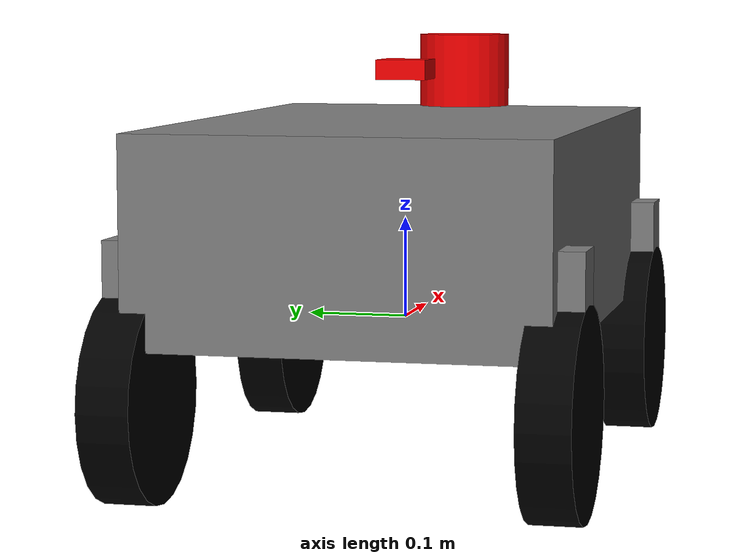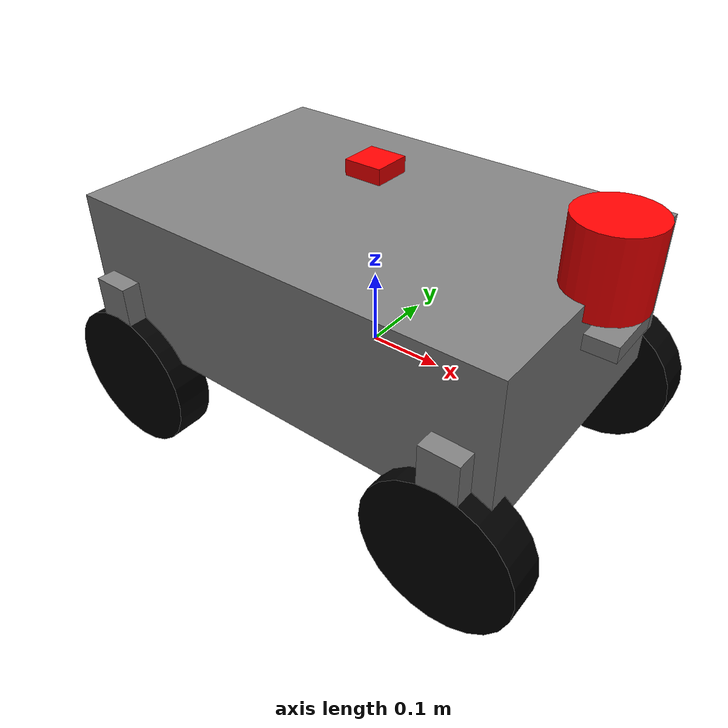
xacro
<?xml version="1.0"?>
<robot xmlns:xacro="http://www.ros.org/wiki/xacro" name="four_wheel_robot">

  <!-- Material definitions -->
  <material name="black">
    <color rgba="0.0 0.0 0.0 1.0"/>
  </material>
  <material name="gray">
    <color rgba="0.5 0.5 0.5 1.0"/>
  </material>
  <material name="red">
    <color rgba="1.0 0.0 0.0 1.0"/>
  </material>

  <!-- Base link -->
  <link name="base_link">
    <visual>
      <origin xyz="0 0 0.1" rpy="0 0 0"/>
      <geometry>
        <box size="0.6 0.4 0.2"/>
      </geometry>
      <material name="gray"/>
    </visual>
    <collision>
      <origin xyz="0 0 0.1" rpy="0 0 0"/>
      <geometry>
        <box size="0.6 0.4 0.2"/>
      </geometry>
    </collision>
    <inertial>
      <mass value="10.0"/>
      <inertia ixx="0.4" ixy="0.0" ixz="0.0" iyy="0.4" iyz="0.0" izz="0.2"/>
    </inertial>
  </link>

  <!-- GPS Sensor -->
  <link name="gps_link">
    <visual>
      <origin xyz="0 0 0" rpy="0 0 0"/>
      <geometry>
        <box size="0.05 0.05 0.02"/>
      </geometry>
      <material name="red"/>
    </visual>
    <inertial>
      <mass value="0.01"/>
      <inertia ixx="0.0001" ixy="0.0" ixz="0.0" iyy="0.0001" iyz="0.0" izz="0.0001"/>
    </inertial>
  </link>

  <joint name="gps_joint" type="fixed">
    <parent link="base_link"/>
    <child link="gps_link"/>
    <origin xyz="0 0 0.25" rpy="0 0 0"/>
  </joint>

  <!-- LIDAR Sensor Mount + Gazebo lazer plugin'i
       Not: Gerçek LIDAR verisi gerektiren SLAM için kullanılır.
       İstersen plugin kısmını yorum satırına alabilirsin. -->
  <link name="lidar_mount_link">
    <visual>
      <origin xyz="0 0 0" rpy="0 0 0"/>
      <geometry>
        <box size="0.08 0.08 0.02"/>
      </geometry>
      <material name="gray"/>
    </visual>
    <inertial>
      <mass value="0.05"/>
      <inertia ixx="0.0005" ixy="0.0" ixz="0.0" iyy="0.0005" iyz="0.0" izz="0.0005"/>
    </inertial>
  </link>

  <joint name="lidar_mount_joint" type="fixed">
    <parent link="base_link"/>
    <child link="lidar_mount_link"/>
    <origin xyz="0.3 0 0.15" rpy="0 0 0"/>
  </joint>

  <!-- Döner LIDAR sensörü -->
  <link name="lidar_link">
    <visual>
      <origin xyz="0 0 0" rpy="0 0 0"/>
      <geometry>
        <cylinder radius="0.05" length="0.1"/>
      </geometry>
      <material name="red"/>
    </visual>
    <inertial>
      <mass value="0.1"/>
      <inertia ixx="0.001" ixy="0.0" ixz="0.0" iyy="0.001" iyz="0.0" izz="0.001"/>
    </inertial>
  </link>

  <joint name="lidar_pan_joint" type="continuous">
    <parent link="lidar_mount_link"/>
    <child link="lidar_link"/>
    <origin xyz="0 0 0.08" rpy="0 0 0"/>
    <axis xyz="0 0 1"/>
  </joint>

  <!-- Gazebo lazer sensörü (LaserScan üretir, SLAM için kullanılabilir) -->
  <gazebo reference="lidar_link">
    <sensor type="ray" name="lidar_sensor">
      <always_on>true</always_on>
      <visualize>true</visualize>
      <update_rate>15.0</update_rate>
      <ray>
        <scan>
          <horizontal>
            <samples>720</samples>
            <resolution>1</resolution>
            <min_angle>-3.14159</min_angle>
            <max_angle>3.14159</max_angle>
          </horizontal>
        </scan>
        <range>
          <min>0.1</min>
          <max>30.0</max>
          <resolution>0.01</resolution>
        </range>
      </ray>
      <plugin name="gazebo_ros_laser" filename="libgazebo_ros_ray_sensor.so">
        <ros>
          <namespace>/</namespace>
          <remapping>scan:=scan</remapping>
        </ros>
        <frame_name>lidar_link</frame_name>
      </plugin>
    </sensor>
  </gazebo>

  <!-- Front Left Wheel -->
  <link name="front_left_wheel">
    <visual>
      <origin xyz="0 0 0" rpy="1.5708 0 0"/>
      <geometry>
        <cylinder radius="0.1" length="0.05"/>
      </geometry>
      <material name="black"/>
    </visual>
    <collision>
      <origin xyz="0 0 0" rpy="1.5708 0 0"/>
      <geometry>
        <cylinder radius="0.1" length="0.05"/>
      </geometry>
    </collision>
    <inertial>
      <mass value="1.0"/>
      <inertia ixx="0.005" ixy="0.0" ixz="0.0" iyy="0.005" iyz="0.0" izz="0.01"/>
    </inertial>
  </link>

  <joint name="front_left_wheel_joint" type="continuous">
    <parent link="base_link"/>
    <child link="front_left_wheel"/>
    <origin xyz="0.25 0.2 -0.05" rpy="0 0 0"/>
    <axis xyz="0 1 0"/>
  </joint>

  <!-- Front Right Wheel -->
  <link name="front_right_wheel">
    <visual>
      <origin xyz="0 0 0" rpy="1.5708 0 0"/>
      <geometry>
        <cylinder radius="0.1" length="0.05"/>
      </geometry>
      <material name="black"/>
    </visual>
    <collision>
      <origin xyz="0 0 0" rpy="1.5708 0 0"/>
      <geometry>
        <cylinder radius="0.1" length="0.05"/>
      </geometry>
    </collision>
    <inertial>
      <mass value="1.0"/>
      <inertia ixx="0.005" ixy="0.0" ixz="0.0" iyy="0.005" iyz="0.0" izz="0.01"/>
    </inertial>
  </link>

  <joint name="front_right_wheel_joint" type="continuous">
    <parent link="base_link"/>
    <child link="front_right_wheel"/>
    <origin xyz="0.25 -0.2 -0.05" rpy="0 0 0"/>
    <axis xyz="0 1 0"/>
  </joint>

  <!-- Rear Left Wheel -->
  <link name="rear_left_wheel">
    <visual>
      <origin xyz="0 0 0" rpy="1.5708 0 0"/>
      <geometry>
        <cylinder radius="0.1" length="0.05"/>
      </geometry>
      <material name="black"/>
    </visual>
    <collision>
      <origin xyz="0 0 0" rpy="1.5708 0 0"/>
      <geometry>
        <cylinder radius="0.1" length="0.05"/>
      </geometry>
    </collision>
    <inertial>
      <mass value="1.0"/>
      <inertia ixx="0.005" ixy="0.0" ixz="0.0" iyy="0.005" iyz="0.0" izz="0.01"/>
    </inertial>
  </link>

  <joint name="rear_left_wheel_joint" type="continuous">
    <parent link="base_link"/>
    <child link="rear_left_wheel"/>
    <origin xyz="-0.25 0.2 -0.05" rpy="0 0 0"/>
    <axis xyz="0 1 0"/>
  </joint>

  <!-- Rear Right Wheel -->
  <link name="rear_right_wheel">
    <visual>
      <origin xyz="0 0 0" rpy="1.5708 0 0"/>
      <geometry>
        <cylinder radius="0.1" length="0.05"/>
      </geometry>
      <material name="black"/>
    </visual>
    <collision>
      <origin xyz="0 0 0" rpy="1.5708 0 0"/>
      <geometry>
        <cylinder radius="0.1" length="0.05"/>
      </geometry>
    </collision>
    <inertial>
      <mass value="1.0"/>
      <inertia ixx="0.005" ixy="0.0" ixz="0.0" iyy="0.005" iyz="0.0" izz="0.01"/>
    </inertial>
  </link>

  <joint name="rear_right_wheel_joint" type="continuous">
    <parent link="base_link"/>
    <child link="rear_right_wheel"/>
    <origin xyz="-0.25 -0.2 -0.05" rpy="0 0 0"/>
    <axis xyz="0 1 0"/>
  </joint>

  <!-- Basit süspansiyon kolları (sadece görsel) -->
  <link name="front_left_suspension">
    <visual>
      <origin xyz="0 0 0.05" rpy="0 0 0"/>
      <geometry>
        <box size="0.05 0.05 0.1"/>
      </geometry>
      <material name="gray"/>
    </visual>
  </link>
  <joint name="front_left_suspension_joint" type="fixed">
    <parent link="base_link"/>
    <child link="front_left_suspension"/>
    <origin xyz="0.25 0.2 0.0" rpy="0 0 0"/>
  </joint>

  <link name="front_right_suspension">
    <visual>
      <origin xyz="0 0 0.05" rpy="0 0 0"/>
      <geometry>
        <box size="0.05 0.05 0.1"/>
      </geometry>
      <material name="gray"/>
    </visual>
  </link>
  <joint name="front_right_suspension_joint" type="fixed">
    <parent link="base_link"/>
    <child link="front_right_suspension"/>
    <origin xyz="0.25 -0.2 0.0" rpy="0 0 0"/>
  </joint>

  <link name="rear_left_suspension">
    <visual>
      <origin xyz="0 0 0.05" rpy="0 0 0"/>
      <geometry>
        <box size="0.05 0.05 0.1"/>
      </geometry>
      <material name="gray"/>
    </visual>
  </link>
  <joint name="rear_left_suspension_joint" type="fixed">
    <parent link="base_link"/>
    <child link="rear_left_suspension"/>
    <origin xyz="-0.25 0.2 0.0" rpy="0 0 0"/>
  </joint>

  <link name="rear_right_suspension">
    <visual>
      <origin xyz="0 0 0.05" rpy="0 0 0"/>
      <geometry>
        <box size="0.05 0.05 0.1"/>
      </geometry>
      <material name="gray"/>
    </visual>
  </link>
  <joint name="rear_right_suspension_joint" type="fixed">
    <parent link="base_link"/>
    <child link="rear_right_suspension"/>
    <origin xyz="-0.25 -0.2 0.0" rpy="0 0 0"/>
  </joint>

  <!-- Gazebo Classic Plugins -->
  <!-- Differential drive plugin (gazebo_ros_diff_drive) -->
  <gazebo>
    <plugin name="gazebo_ros_diff_drive" filename="libgazebo_ros_diff_drive.so">
      <ros>
        <namespace>/</namespace>
        <remapping>cmd_vel:=cmd_vel</remapping>
        <remapping>odom:=odom</remapping>
      </ros>
      <update_rate>50</update_rate>
      <left_joint>front_left_wheel_joint</left_joint>
      <left_joint>rear_left_wheel_joint</left_joint>
      <right_joint>front_right_wheel_joint</right_joint>
      <right_joint>rear_right_wheel_joint</right_joint>
      <wheel_separation>0.4</wheel_separation>
      <wheel_diameter>0.2</wheel_diameter>
      <odom_frame>odom</odom_frame>
      <robot_base_frame>base_link</robot_base_frame>
      <enable_odom_tf>true</enable_odom_tf>
    </plugin>
  </gazebo>

</robot>
